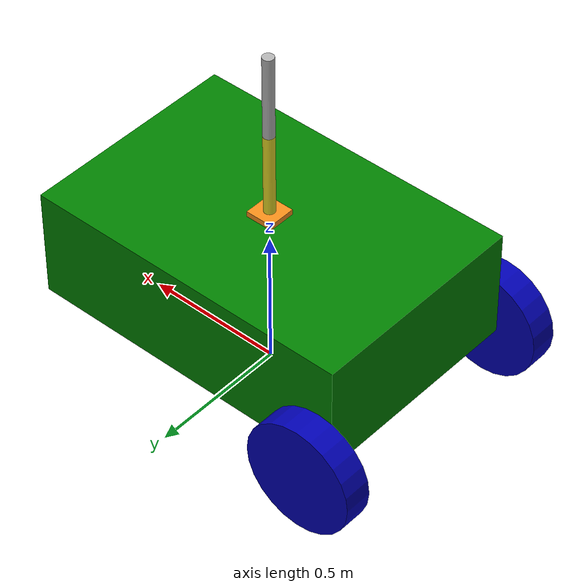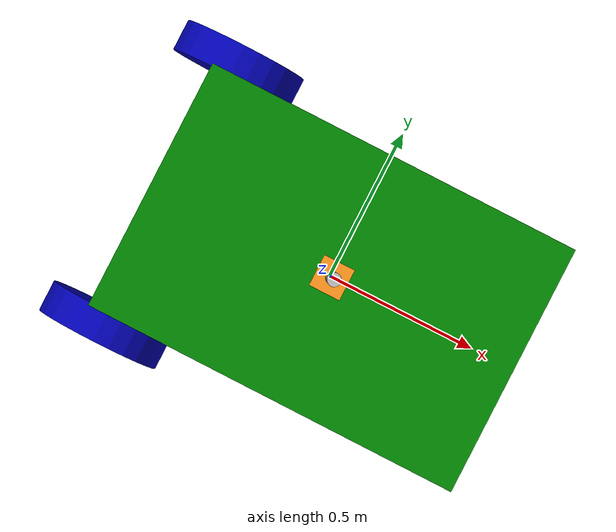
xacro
<?xml version="1.0"?>
<robot name="my_robot" xmlns:xacro="http://www.ros.org/wiki/xacro">

    <xacro:include filename="common_properties.xacro"/>
    <xacro:include filename="mobile_base.xacro"/>
    <xacro:include filename="mobile_base_gazebo.xacro"/>
    <xacro:include filename="camera.xacro"/>

</robot>

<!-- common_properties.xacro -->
<robot xmlns:xacro="http://www.ros.org/wiki/xacro">
<material name="green">
        <color rgba="0 0.5 0 1"/>
    </material>
    <material name="grey">
        <color rgba="0.5 0.5 0.5 1"/>
    </material>
    <material name="blue">
        <color rgba="0 0 0.7 1"/>
    </material>

    <xacro:macro name="box_inertia" params="m x y z o_xyz o_rpy">
    <inertial>
        <origin xyz="${o_xyz}" rpy="${o_rpy}"/>
        <mass value="${m}"/>
        <inertia ixx="${m*(y*y + z*z)/12}" ixy="0" ixz="0"
                 iyy="${m*(x*x + z*z)/12}" iyz="0"
                 izz="${m*(y*y + x*x)/12}"/>
    </inertial>
    </xacro:macro>

    <xacro:macro name="cylinderical_inertia" params="m r l o_xyz o_rpy">
    <inertial>
        <origin xyz="${o_xyz}" rpy="${o_rpy}"/>
        <mass value="${m}"/>
        <inertia ixx="${m*(3*r*r + l*l)/12}" ixy="0" ixz="0"
                 iyy="${m*(3*r*r + l*l)/12}" iyz="0"
                 izz="${m*(r*r)/2}"/>
    </inertial>
    </xacro:macro>

    <xacro:macro name="spherical_inertia" params="m r  o_xyz o_rpy">
    <inertial>
        <origin xyz="${o_xyz}" rpy="${o_rpy}"/>
        <mass value="${m}"/>
        <inertia ixx="${m*(2*r*r)/3}" ixy="0" ixz="0"
                 iyy="${m*(2*r*r)/3}" iyz="0"
                 izz="${m*(r*r)/2}"/>
    </inertial>
    </xacro:macro>

</robot>

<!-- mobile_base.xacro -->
<robot xmlns:xacro="http://www.ros.org/wiki/xacro">

    <xacro:property name="base_length" value="1.2"/>
    <xacro:property name="base_width" value="0.8"/>
    <xacro:property name="base_height" value="0.4"/>
    <xacro:property name="wheel_radius" value="0.2"/>
    <xacro:property name="wheel_length" value="0.1"/>
    <xacro:property name="caster_wheel_radius" value="0.1"/>
    <xacro:property name="arm_base_length" value="0.1"/>
    <xacro:property name="arm_base_width" value="0.1"/>
    <xacro:property name="arm_base_height" value="0.02"/>
    <xacro:property name="forearm_length" value="0.3"/>
    <xacro:property name="forearm_radius" value="0.02"/>
    <xacro:property name="hand_radius" value="0.02"/>
    <xacro:property name="hand_lenght" value="0.3"/>

    <link name="base_link">
        <visual>
            <geometry>
                <box size="${base_length} ${base_width} ${base_height}" />
            </geometry>
            <origin xyz="0 0 ${base_height/2.0}" rpy="0 0 0" />
            <material name="green"/>
        </visual>

        <collision>
            <geometry>
                <box size="${base_length} ${base_width} ${base_height}" />
            </geometry>
            <origin xyz="0 0 ${base_height/2.0}" rpy="0 0 0" />
        </collision>

        <xacro:box_inertia m="5.0" x="${base_length}" y="${base_width}" z="${base_height}" o_xyz="0 0 ${base_height/2.0}" o_rpy="0 0 0" />
    </link>

    <xacro:macro name="wheel" params="prefix y">
        <link name="${prefix}_wheel">
            <visual>
                <geometry>
                    <cylinder radius="${wheel_radius}" length="${wheel_length}"/>
                </geometry>
                <origin xyz="0 ${y*wheel_length/2.0} 0" rpy="${pi/2.0} 0 0" />
                <material name="blue"/>
            </visual>

            <collision>
                <geometry>
                    <sphere radius="${wheel_radius}" />
                </geometry>
                <origin xyz="0 ${y*wheel_length/2.0} 0" rpy="0 0 0" />
            </collision>

            <xacro:cylinderical_inertia m="1" r="${wheel_radius}" l="${wheel_length}" o_xyz="0 ${y*wheel_length/2.0} 0" o_rpy="${pi/2.0} 0 0" />
        </link>
    </xacro:macro>

    <xacro:wheel prefix="right" y="1" />
    <xacro:wheel prefix="left"  y="-1"/>

    <link name="caster_wheel_link">
        <visual>
            <geometry>
                <sphere radius="${caster_wheel_radius}"/>
            </geometry>
            <origin xyz="0 0 0" rpy="0 0 0" />
            <material name="blue"/>
        </visual>

        <collision>
            <geometry>
                <sphere radius="${caster_wheel_radius}"/>
            </geometry>
            <origin xyz="0 0 0" rpy="0 0 0" />
        </collision>

        <xacro:spherical_inertia m="0.5" r="${caster_wheel_radius}" o_xyz="0 0 0" o_rpy="0 0 0"/>
    </link>

    <link name="base_footprint">
    </link>

    <link name="arm_base_link">
        <visual>
            <geometry>
                <box size="${arm_base_length} ${arm_base_width} ${arm_base_height}" />
            </geometry>
            <origin xyz="0 0 ${arm_base_height/2.0}" rpy="0 0 0" />
            <material name="orange"/>
        </visual>

        <collision>
            <geometry>
                <box size="${arm_base_length} ${arm_base_width} ${arm_base_height}" />
            </geometry>
            <origin xyz="0 0 ${arm_base_height/2.0}" rpy="0 0 0" />
        </collision>

        <xacro:box_inertia m="0.5" x="${arm_base_length}" y="${arm_base_width}" z="${arm_base_height}" o_xyz="0 0 ${arm_base_height/2.0}" o_rpy="0 0 0" />
    </link>

    <link name="forearm_link">
        <visual>
            <geometry>
                <cylinder radius="${forearm_radius}" length="${forearm_length}" />
            </geometry>
            <origin xyz="0 0 ${forearm_length/2.0}" rpy="0 0 0" />
            <material name="yellow"/>
        </visual>

        <collision>
                <geometry>
                    <cylinder radius="${forearm_radius}" length="${forearm_length}"/>
                </geometry>
                <origin xyz="0 0 ${forearm_length/2.0}" rpy="0 0 0" />
            </collision>

            <xacro:cylinderical_inertia m="0.3" r="${forearm_radius}" l="${forearm_length}" o_xyz="0 0 ${forearm_length/2.0}" o_rpy="0 0 0" />

    </link>

    <link name="hand_link">
        <visual>
            <geometry>
                <cylinder radius="${hand_radius}" length="${hand_lenght}"/>
            </geometry>
            <origin xyz="0 0 ${hand_lenght/2.0}" rpy="0 0 0"/>
        </visual>
        <material name="orange"/>

        <collision>
                <geometry>
                    <cylinder radius="${hand_radius}" length="${hand_lenght}"/>
                </geometry>
                <origin xyz="0 0 ${hand_lenght/2.0}" rpy="0 0 0"/>
            </collision>

            <xacro:cylinderical_inertia m="0.3" r="${hand_radius}" l="${hand_lenght}" o_xyz="0 0 ${hand_lenght/2.0}" o_rpy="0 0 0" />

    </link>

    <joint name="Base_left_r_wheel" type="continuous">
        <parent link="base_link" />
        <child link="left_wheel" />
        <origin xyz="${-((base_length/2.0)-0.05)} ${-base_width/2.0} 0" rpy="0 0 0"/>
        <axis xyz="0 1 0"/>
    </joint>

    <joint name="Base_right_r_wheel" type="continuous">
        <parent link="base_link" />
        <child link="right_wheel" />
        <origin xyz="${-((base_length/2.0)-0.05)} ${base_width/2.0} 0" rpy="0 0 0"/>
        <axis xyz="0 1 0"/>
    </joint>

    <joint name="Base_caster_wheel" type="fixed">
        <parent link="base_link" />
        <child link="caster_wheel_link" />
        <origin xyz="0.2 0 ${-caster_wheel_radius}" rpy="0 0 0"/>
    </joint>

    <joint name="base_joint" type="fixed">
        <parent link="base_footprint" />
        <child link="base_link" />
        <origin xyz="0 0 ${wheel_radius}" rpy="0 0 0"/>
    </joint>

    <joint name="base_forearm_link" type="revolute">
        <parent link="arm_base_link"/>
        <child link="forearm_link"/>
        <origin xyz="0 0 ${arm_base_height}" rpy="0 0 0"/>
        <axis xyz="0 0 1"/>
        <limit lower="0" upper="${pi/2.0}" effort="100" velocity="100"/>
        <dynamics damping="0.3" friction="0.3"/>
    </joint>

    <joint name="hand_forearm_joint" type="revolute">
        <parent link="forearm_link"/>
        <child link="hand_link"/>
        <origin xyz="0 0 ${forearm_length}" rpy="0 0 0"/>
        <axis xyz="0 1 0"/>
        <limit lower="0" upper="${pi/2.0}" effort="100" velocity="100"/>
        <dynamics damping="0.3" friction="0.3"/>

    </joint>

    <joint name="base_arm_joint" type="fixed">
        <parent link="base_link"/>
        <child link="arm_base_link"/>
        <origin xyz="0 0 ${base_height}" rpy="0 0 0"/>
    </joint>

</robot>

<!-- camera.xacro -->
<robot xmlns:xacro="http://www.ros.org/wiki/xacro">

    <xacro:property name="camera_length" value="0.01"/>
    <xacro:property name="camera_width" value="0.1"/>
    <xacro:property name="camera_height" value="0.05"/>

<link name="camera_link">
        <visual>
            <geometry>
                <box size="${camera_length} ${camera_width} ${camera_height}" />
            </geometry>
            <origin xyz="${camera_length/2.0} 0 0" rpy="0 0 0" />
            <material name="grey"/>
        </visual>

        <collision>
            <geometry>
                <box size="${camera_length} ${camera_width} ${camera_height}" />
            </geometry>
            <origin xyz="0 0 0" rpy="0 0 0" />
        </collision>

        <xacro:box_inertia m="0.1" x="${camera_length}" y="${camera_width}" z="${camera_height}" o_xyz="${camera_length/2.0} 0 0" o_rpy="0 0 0" />
    </link>

    <link name="camera_link_optical">
    </link>

<joint name="base_camera_joint" type="fixed">
    <parent link="base_link"/>
    <child link="camera_link"/>
    <origin xyz="${base_length/2.0} 0 ${base_height/2.0}" rpy="0 0 0" />

</joint>

<joint name="camera_optical_joint" type="fixed">
    <parent link="camera_link"/>
    <child link="camera_link_optical"/>
    <origin xyz="0 0 0" rpy="${-pi/2.0} 0 ${-pi/2.0}"/>
</joint>

<gazebo reference="camera_link">
    <sensor name="camera" type="camera">
        <camera>
            <horizontal_fov>1.3962634</horizontal_fov>
            <image>
                <width>640</width>
                <height>480</height>
                <format>R8G8B8</format>
            </image>
            <clip>
                <near>0.1</near>
                <far>15</far>
            </clip>
            <noise>
                <type>gaussian</type>
                <mean>0.0</mean>
                <stddev>0.007</stddev>
            </noise>
            <optical_frame_id>camera_link_optical</optical_frame_id>
            <camera_info_topic>camera/camera_info</camera_info_topic>
        </camera>
        <always_on>1</always_on>
        <update_rate>20</update_rate>
        <visualize>true</visualize>
        <topic>camera/image_raw</topic>
    </sensor>
</gazebo>

</robot>
